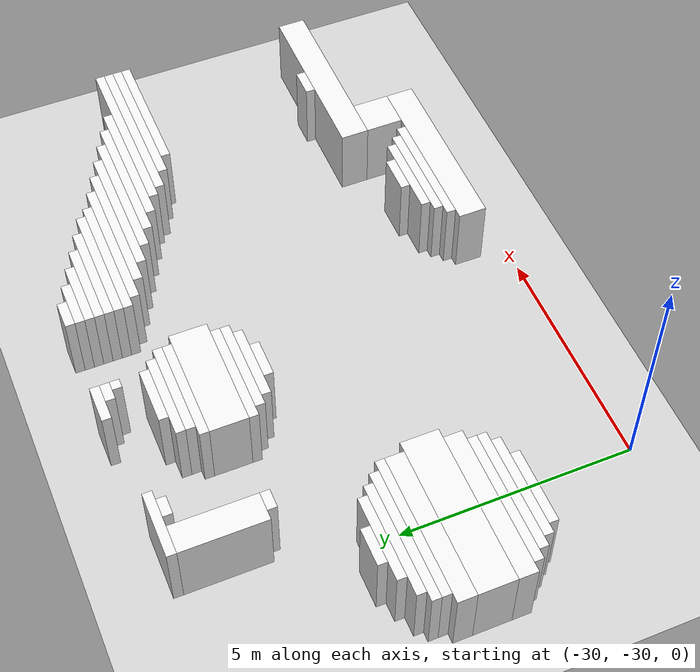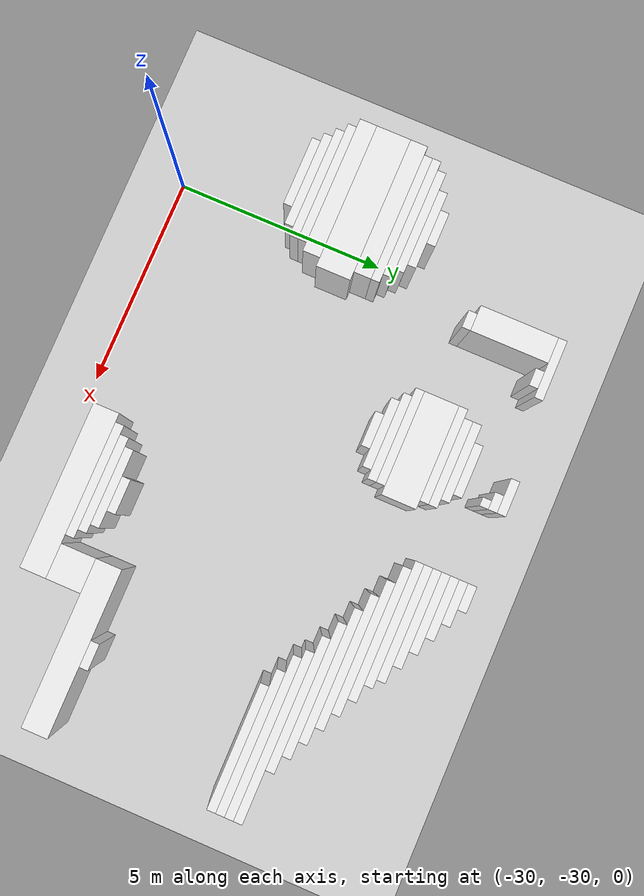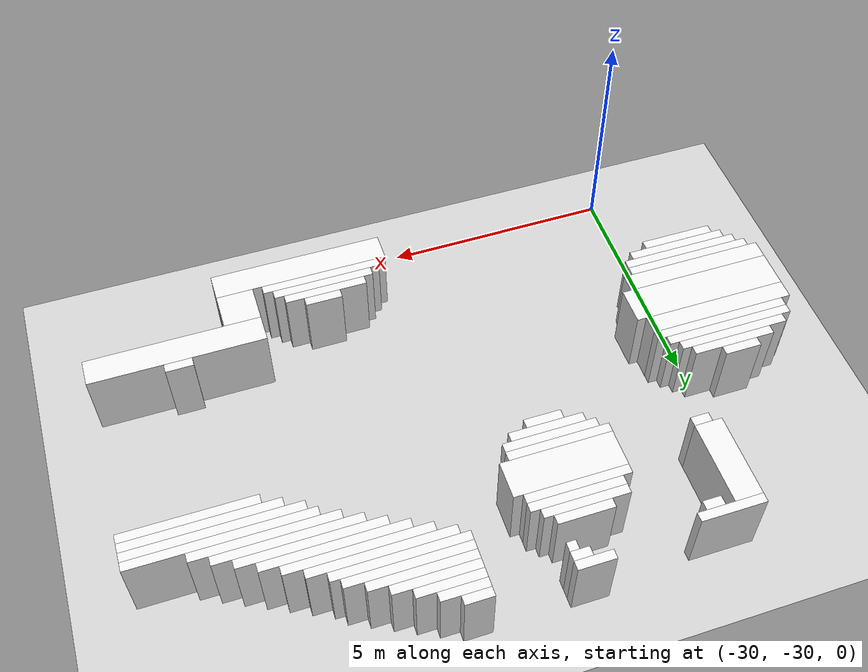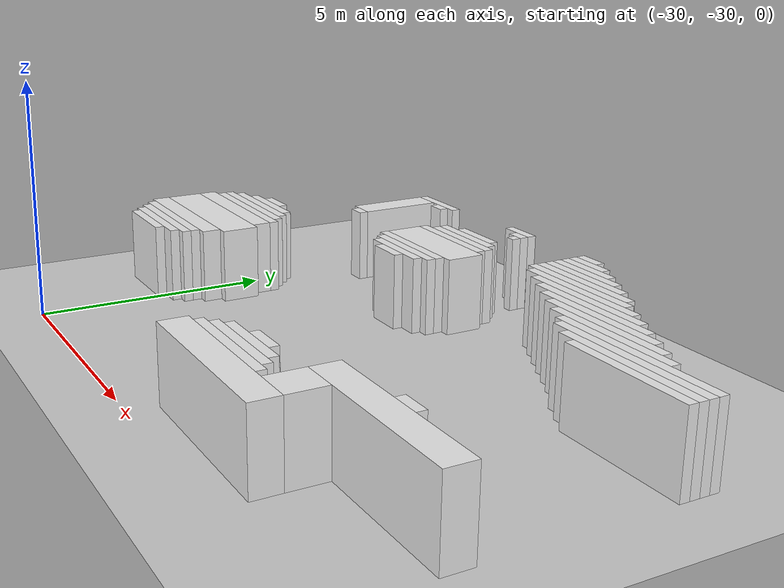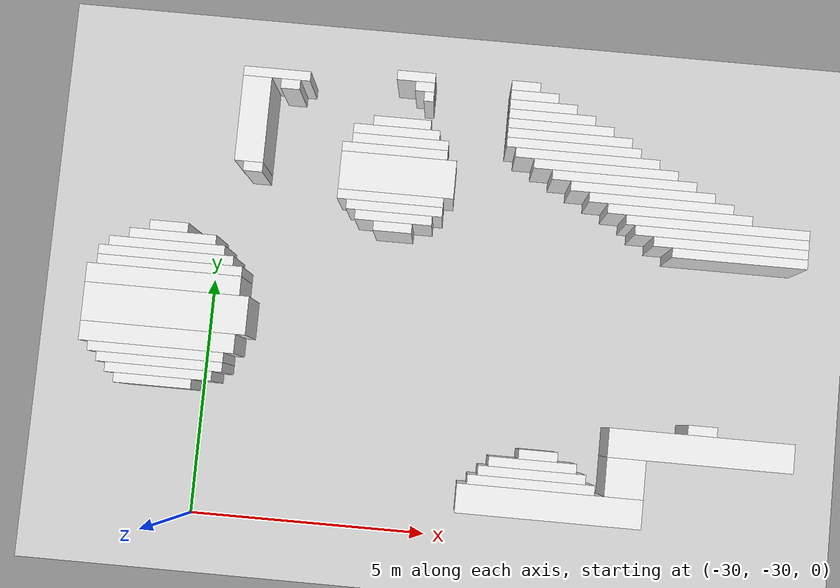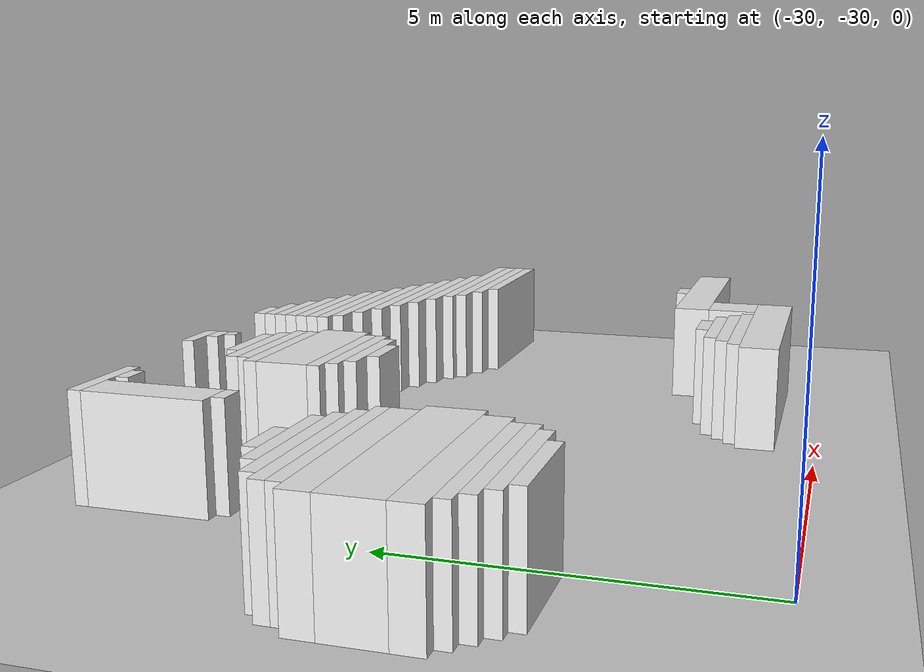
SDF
<sdf version="1.7">
 <world name="default">
  <model name="ground_plane">
   <static>1</static>
   <link name="link">
    <collision name="collision">
     <geometry><plane><normal>0 0 1</normal><size>120 120</size></plane></geometry>
    </collision>
    <visual name="visual">
     <geometry><plane><normal>0 0 1</normal><size>120 120</size></plane></geometry>
     <material>
      <script><uri>file://media/materials/scripts/gazebo.material</uri><name>Gazebo/Grey</name></script>
     </material>
    </visual>
   </link>
  </model>
  <model name="random_complex_02_model">
   <static>1</static>
   <link name="obs_2789">
    <pose>-26.0000 -20.5000 0.8000 0 0 0</pose>
    <collision name="obs_2789_col"><geometry><box><size>0.8000 0.2000 1.6000</size></box></geometry></collision>
    <visual name="obs_2789_vis">
     <geometry><box><size>0.8000 0.2000 1.6000</size></box></geometry>
     <material>
      <script><uri>file://media/materials/scripts/gazebo.material</uri><name>Gazebo/White</name></script>
     </material>
    </visual>
   </link>
   <link name="obs_2790">
    <pose>-23.7000 -20.5000 0.8000 0 0 0</pose>
    <collision name="obs_2790_col"><geometry><box><size>0.6000 0.2000 1.6000</size></box></geometry></collision>
    <visual name="obs_2790_vis">
     <geometry><box><size>0.6000 0.2000 1.6000</size></box></geometry>
     <material>
      <script><uri>file://media/materials/scripts/gazebo.material</uri><name>Gazebo/White</name></script>
     </material>
    </visual>
   </link>
   <link name="obs_2794">
    <pose>-28.9000 -20.7000 0.8000 0 0 0</pose>
    <collision name="obs_2794_col"><geometry><box><size>1.4000 0.2000 1.6000</size></box></geometry></collision>
    <visual name="obs_2794_vis">
     <geometry><box><size>1.4000 0.2000 1.6000</size></box></geometry>
     <material>
      <script><uri>file://media/materials/scripts/gazebo.material</uri><name>Gazebo/White</name></script>
     </material>
    </visual>
   </link>
   <link name="obs_2795">
    <pose>-25.8000 -20.7000 0.8000 0 0 0</pose>
    <collision name="obs_2795_col"><geometry><box><size>0.4000 0.2000 1.6000</size></box></geometry></collision>
    <visual name="obs_2795_vis">
     <geometry><box><size>0.4000 0.2000 1.6000</size></box></geometry>
     <material>
      <script><uri>file://media/materials/scripts/gazebo.material</uri><name>Gazebo/White</name></script>
     </material>
    </visual>
   </link>
   <link name="obs_2796">
    <pose>-23.5000 -20.7000 0.8000 0 0 0</pose>
    <collision name="obs_2796_col"><geometry><box><size>1.0000 0.2000 1.6000</size></box></geometry></collision>
    <visual name="obs_2796_vis">
     <geometry><box><size>1.0000 0.2000 1.6000</size></box></geometry>
     <material>
      <script><uri>file://media/materials/scripts/gazebo.material</uri><name>Gazebo/White</name></script>
     </material>
    </visual>
   </link>
   <link name="obs_2802">
    <pose>-28.6000 -20.9000 0.8000 0 0 0</pose>
    <collision name="obs_2802_col"><geometry><box><size>0.4000 0.2000 1.6000</size></box></geometry></collision>
    <visual name="obs_2802_vis">
     <geometry><box><size>0.4000 0.2000 1.6000</size></box></geometry>
     <material>
      <script><uri>file://media/materials/scripts/gazebo.material</uri><name>Gazebo/White</name></script>
     </material>
    </visual>
   </link>
   <link name="obs_2803">
    <pose>-25.7000 -20.9000 0.8000 0 0 0</pose>
    <collision name="obs_2803_col"><geometry><box><size>0.2000 0.2000 1.6000</size></box></geometry></collision>
    <visual name="obs_2803_vis">
     <geometry><box><size>0.2000 0.2000 1.6000</size></box></geometry>
     <material>
      <script><uri>file://media/materials/scripts/gazebo.material</uri><name>Gazebo/White</name></script>
     </material>
    </visual>
   </link>
   <link name="obs_2804">
    <pose>-23.3000 -20.9000 0.8000 0 0 0</pose>
    <collision name="obs_2804_col"><geometry><box><size>1.4000 0.2000 1.6000</size></box></geometry></collision>
    <visual name="obs_2804_vis">
     <geometry><box><size>1.4000 0.2000 1.6000</size></box></geometry>
     <material>
      <script><uri>file://media/materials/scripts/gazebo.material</uri><name>Gazebo/White</name></script>
     </material>
    </visual>
   </link>
   <link name="obs_2809">
    <pose>-23.1000 -21.1000 0.8000 0 0 0</pose>
    <collision name="obs_2809_col"><geometry><box><size>1.8000 0.2000 1.6000</size></box></geometry></collision>
    <visual name="obs_2809_vis">
     <geometry><box><size>1.8000 0.2000 1.6000</size></box></geometry>
     <material>
      <script><uri>file://media/materials/scripts/gazebo.material</uri><name>Gazebo/White</name></script>
     </material>
    </visual>
   </link>
   <link name="obs_2815">
    <pose>-22.9000 -21.3000 0.8000 0 0 0</pose>
    <collision name="obs_2815_col"><geometry><box><size>2.2000 0.2000 1.6000</size></box></geometry></collision>
    <visual name="obs_2815_vis">
     <geometry><box><size>2.2000 0.2000 1.6000</size></box></geometry>
     <material>
      <script><uri>file://media/materials/scripts/gazebo.material</uri><name>Gazebo/White</name></script>
     </material>
    </visual>
   </link>
   <link name="obs_2821">
    <pose>-26.2000 -21.5000 0.8000 0 0 0</pose>
    <collision name="obs_2821_col"><geometry><box><size>1.2000 0.2000 1.6000</size></box></geometry></collision>
    <visual name="obs_2821_vis">
     <geometry><box><size>1.2000 0.2000 1.6000</size></box></geometry>
     <material>
      <script><uri>file://media/materials/scripts/gazebo.material</uri><name>Gazebo/White</name></script>
     </material>
    </visual>
   </link>
   <link name="obs_2822">
    <pose>-22.7000 -21.5000 0.8000 0 0 0</pose>
    <collision name="obs_2822_col"><geometry><box><size>2.6000 0.2000 1.6000</size></box></geometry></collision>
    <visual name="obs_2822_vis">
     <geometry><box><size>2.6000 0.2000 1.6000</size></box></geometry>
     <material>
      <script><uri>file://media/materials/scripts/gazebo.material</uri><name>Gazebo/White</name></script>
     </material>
    </visual>
   </link>
   <link name="obs_2828">
    <pose>-26.3000 -21.7000 0.8000 0 0 0</pose>
    <collision name="obs_2828_col"><geometry><box><size>1.8000 0.2000 1.6000</size></box></geometry></collision>
    <visual name="obs_2828_vis">
     <geometry><box><size>1.8000 0.2000 1.6000</size></box></geometry>
     <material>
      <script><uri>file://media/materials/scripts/gazebo.material</uri><name>Gazebo/White</name></script>
     </material>
    </visual>
   </link>
   <link name="obs_2829">
    <pose>-22.6000 -21.7000 0.8000 0 0 0</pose>
    <collision name="obs_2829_col"><geometry><box><size>2.8000 0.2000 1.6000</size></box></geometry></collision>
    <visual name="obs_2829_vis">
     <geometry><box><size>2.8000 0.2000 1.6000</size></box></geometry>
     <material>
      <script><uri>file://media/materials/scripts/gazebo.material</uri><name>Gazebo/White</name></script>
     </material>
    </visual>
   </link>
   <link name="obs_2836">
    <pose>-26.2000 -21.9000 0.8000 0 0 0</pose>
    <collision name="obs_2836_col"><geometry><box><size>2.0000 0.2000 1.6000</size></box></geometry></collision>
    <visual name="obs_2836_vis">
     <geometry><box><size>2.0000 0.2000 1.6000</size></box></geometry>
     <material>
      <script><uri>file://media/materials/scripts/gazebo.material</uri><name>Gazebo/White</name></script>
     </material>
    </visual>
   </link>
   <link name="obs_2837">
    <pose>-22.3000 -21.9000 0.8000 0 0 0</pose>
    <collision name="obs_2837_col"><geometry><box><size>3.0000 0.2000 1.6000</size></box></geometry></collision>
    <visual name="obs_2837_vis">
     <geometry><box><size>3.0000 0.2000 1.6000</size></box></geometry>
     <material>
      <script><uri>file://media/materials/scripts/gazebo.material</uri><name>Gazebo/White</name></script>
     </material>
    </visual>
   </link>
   <link name="obs_2843">
    <pose>-26.3000 -22.1000 0.8000 0 0 0</pose>
    <collision name="obs_2843_col"><geometry><box><size>2.2000 0.2000 1.6000</size></box></geometry></collision>
    <visual name="obs_2843_vis">
     <geometry><box><size>2.2000 0.2000 1.6000</size></box></geometry>
     <material>
      <script><uri>file://media/materials/scripts/gazebo.material</uri><name>Gazebo/White</name></script>
     </material>
    </visual>
   </link>
   <link name="obs_2844">
    <pose>-21.9000 -22.1000 0.8000 0 0 0</pose>
    <collision name="obs_2844_col"><geometry><box><size>3.0000 0.2000 1.6000</size></box></geometry></collision>
    <visual name="obs_2844_vis">
     <geometry><box><size>3.0000 0.2000 1.6000</size></box></geometry>
     <material>
      <script><uri>file://media/materials/scripts/gazebo.material</uri><name>Gazebo/White</name></script>
     </material>
    </visual>
   </link>
   <link name="obs_2849">
    <pose>-21.5000 -22.3000 0.8000 0 0 0</pose>
    <collision name="obs_2849_col"><geometry><box><size>3.0000 0.2000 1.6000</size></box></geometry></collision>
    <visual name="obs_2849_vis">
     <geometry><box><size>3.0000 0.2000 1.6000</size></box></geometry>
     <material>
      <script><uri>file://media/materials/scripts/gazebo.material</uri><name>Gazebo/White</name></script>
     </material>
    </visual>
   </link>
   <link name="obs_2851">
    <pose>-29.3000 -21.7000 0.8000 0 0 0</pose>
    <collision name="obs_2851_col"><geometry><box><size>0.6000 1.8000 1.6000</size></box></geometry></collision>
    <visual name="obs_2851_vis">
     <geometry><box><size>0.6000 1.8000 1.6000</size></box></geometry>
     <material>
      <script><uri>file://media/materials/scripts/gazebo.material</uri><name>Gazebo/White</name></script>
     </material>
    </visual>
   </link>
   <link name="obs_2852">
    <pose>-21.1000 -22.5000 0.8000 0 0 0</pose>
    <collision name="obs_2852_col"><geometry><box><size>3.0000 0.2000 1.6000</size></box></geometry></collision>
    <visual name="obs_2852_vis">
     <geometry><box><size>3.0000 0.2000 1.6000</size></box></geometry>
     <material>
      <script><uri>file://media/materials/scripts/gazebo.material</uri><name>Gazebo/White</name></script>
     </material>
    </visual>
   </link>
   <link name="obs_2859">
    <pose>-29.2000 -22.7000 0.8000 0 0 0</pose>
    <collision name="obs_2859_col"><geometry><box><size>0.4000 0.2000 1.6000</size></box></geometry></collision>
    <visual name="obs_2859_vis">
     <geometry><box><size>0.4000 0.2000 1.6000</size></box></geometry>
     <material>
      <script><uri>file://media/materials/scripts/gazebo.material</uri><name>Gazebo/White</name></script>
     </material>
    </visual>
   </link>
   <link name="obs_2860">
    <pose>-20.7000 -22.7000 0.8000 0 0 0</pose>
    <collision name="obs_2860_col"><geometry><box><size>3.0000 0.2000 1.6000</size></box></geometry></collision>
    <visual name="obs_2860_vis">
     <geometry><box><size>3.0000 0.2000 1.6000</size></box></geometry>
     <material>
      <script><uri>file://media/materials/scripts/gazebo.material</uri><name>Gazebo/White</name></script>
     </material>
    </visual>
   </link>
   <link name="obs_2865">
    <pose>-26.2000 -22.6000 0.8000 0 0 0</pose>
    <collision name="obs_2865_col"><geometry><box><size>2.4000 0.8000 1.6000</size></box></geometry></collision>
    <visual name="obs_2865_vis">
     <geometry><box><size>2.4000 0.8000 1.6000</size></box></geometry>
     <material>
      <script><uri>file://media/materials/scripts/gazebo.material</uri><name>Gazebo/White</name></script>
     </material>
    </visual>
   </link>
   <link name="obs_2867">
    <pose>-20.3000 -22.9000 0.8000 0 0 0</pose>
    <collision name="obs_2867_col"><geometry><box><size>3.0000 0.2000 1.6000</size></box></geometry></collision>
    <visual name="obs_2867_vis">
     <geometry><box><size>3.0000 0.2000 1.6000</size></box></geometry>
     <material>
      <script><uri>file://media/materials/scripts/gazebo.material</uri><name>Gazebo/White</name></script>
     </material>
    </visual>
   </link>
   <link name="obs_2877">
    <pose>-26.3000 -23.1000 0.8000 0 0 0</pose>
    <collision name="obs_2877_col"><geometry><box><size>2.2000 0.2000 1.6000</size></box></geometry></collision>
    <visual name="obs_2877_vis">
     <geometry><box><size>2.2000 0.2000 1.6000</size></box></geometry>
     <material>
      <script><uri>file://media/materials/scripts/gazebo.material</uri><name>Gazebo/White</name></script>
     </material>
    </visual>
   </link>
   <link name="obs_2878">
    <pose>-19.5000 -23.1000 0.8000 0 0 0</pose>
    <collision name="obs_2878_col"><geometry><box><size>3.8000 0.2000 1.6000</size></box></geometry></collision>
    <visual name="obs_2878_vis">
     <geometry><box><size>3.8000 0.2000 1.6000</size></box></geometry>
     <material>
      <script><uri>file://media/materials/scripts/gazebo.material</uri><name>Gazebo/White</name></script>
     </material>
    </visual>
   </link>
   <link name="obs_2885">
    <pose>-26.2000 -23.3000 0.8000 0 0 0</pose>
    <collision name="obs_2885_col"><geometry><box><size>2.0000 0.2000 1.6000</size></box></geometry></collision>
    <visual name="obs_2885_vis">
     <geometry><box><size>2.0000 0.2000 1.6000</size></box></geometry>
     <material>
      <script><uri>file://media/materials/scripts/gazebo.material</uri><name>Gazebo/White</name></script>
     </material>
    </visual>
   </link>
   <link name="obs_2886">
    <pose>-19.4000 -23.3000 0.8000 0 0 0</pose>
    <collision name="obs_2886_col"><geometry><box><size>3.6000 0.2000 1.6000</size></box></geometry></collision>
    <visual name="obs_2886_vis">
     <geometry><box><size>3.6000 0.2000 1.6000</size></box></geometry>
     <material>
      <script><uri>file://media/materials/scripts/gazebo.material</uri><name>Gazebo/White</name></script>
     </material>
    </visual>
   </link>
   <link name="obs_2893">
    <pose>-26.2000 -23.5000 0.8000 0 0 0</pose>
    <collision name="obs_2893_col"><geometry><box><size>1.6000 0.2000 1.6000</size></box></geometry></collision>
    <visual name="obs_2893_vis">
     <geometry><box><size>1.6000 0.2000 1.6000</size></box></geometry>
     <material>
      <script><uri>file://media/materials/scripts/gazebo.material</uri><name>Gazebo/White</name></script>
     </material>
    </visual>
   </link>
   <link name="obs_2894">
    <pose>-19.2000 -23.5000 0.8000 0 0 0</pose>
    <collision name="obs_2894_col"><geometry><box><size>3.2000 0.2000 1.6000</size></box></geometry></collision>
    <visual name="obs_2894_vis">
     <geometry><box><size>3.2000 0.2000 1.6000</size></box></geometry>
     <material>
      <script><uri>file://media/materials/scripts/gazebo.material</uri><name>Gazebo/White</name></script>
     </material>
    </visual>
   </link>
   <link name="obs_2899">
    <pose>-26.2000 -23.7000 0.8000 0 0 0</pose>
    <collision name="obs_2899_col"><geometry><box><size>0.8000 0.2000 1.6000</size></box></geometry></collision>
    <visual name="obs_2899_vis">
     <geometry><box><size>0.8000 0.2000 1.6000</size></box></geometry>
     <material>
      <script><uri>file://media/materials/scripts/gazebo.material</uri><name>Gazebo/White</name></script>
     </material>
    </visual>
   </link>
   <link name="obs_2900">
    <pose>-19.0000 -23.7000 0.8000 0 0 0</pose>
    <collision name="obs_2900_col"><geometry><box><size>2.8000 0.2000 1.6000</size></box></geometry></collision>
    <visual name="obs_2900_vis">
     <geometry><box><size>2.8000 0.2000 1.6000</size></box></geometry>
     <material>
      <script><uri>file://media/materials/scripts/gazebo.material</uri><name>Gazebo/White</name></script>
     </material>
    </visual>
   </link>
   <link name="obs_2912">
    <pose>-30.8000 -24.1000 0.8000 0 0 0</pose>
    <collision name="obs_2912_col"><geometry><box><size>0.8000 0.2000 1.6000</size></box></geometry></collision>
    <visual name="obs_2912_vis">
     <geometry><box><size>0.8000 0.2000 1.6000</size></box></geometry>
     <material>
      <script><uri>file://media/materials/scripts/gazebo.material</uri><name>Gazebo/White</name></script>
     </material>
    </visual>
   </link>
   <link name="obs_2920">
    <pose>-30.7000 -24.3000 0.8000 0 0 0</pose>
    <collision name="obs_2920_col"><geometry><box><size>1.8000 0.2000 1.6000</size></box></geometry></collision>
    <visual name="obs_2920_vis">
     <geometry><box><size>1.8000 0.2000 1.6000</size></box></geometry>
     <material>
      <script><uri>file://media/materials/scripts/gazebo.material</uri><name>Gazebo/White</name></script>
     </material>
    </visual>
   </link>
   <link name="obs_2927">
    <pose>-30.8000 -24.5000 0.8000 0 0 0</pose>
    <collision name="obs_2927_col"><geometry><box><size>2.4000 0.2000 1.6000</size></box></geometry></collision>
    <visual name="obs_2927_vis">
     <geometry><box><size>2.4000 0.2000 1.6000</size></box></geometry>
     <material>
      <script><uri>file://media/materials/scripts/gazebo.material</uri><name>Gazebo/White</name></script>
     </material>
    </visual>
   </link>
   <link name="obs_2937">
    <pose>-30.8000 -24.7000 0.8000 0 0 0</pose>
    <collision name="obs_2937_col"><geometry><box><size>2.8000 0.2000 1.6000</size></box></geometry></collision>
    <visual name="obs_2937_vis">
     <geometry><box><size>2.8000 0.2000 1.6000</size></box></geometry>
     <material>
      <script><uri>file://media/materials/scripts/gazebo.material</uri><name>Gazebo/White</name></script>
     </material>
    </visual>
   </link>
   <link name="obs_2943">
    <pose>-30.7000 -24.9000 0.8000 0 0 0</pose>
    <collision name="obs_2943_col"><geometry><box><size>3.0000 0.2000 1.6000</size></box></geometry></collision>
    <visual name="obs_2943_vis">
     <geometry><box><size>3.0000 0.2000 1.6000</size></box></geometry>
     <material>
      <script><uri>file://media/materials/scripts/gazebo.material</uri><name>Gazebo/White</name></script>
     </material>
    </visual>
   </link>
   <link name="obs_2957">
    <pose>-30.8000 -25.2000 0.8000 0 0 0</pose>
    <collision name="obs_2957_col"><geometry><box><size>3.2000 0.4000 1.6000</size></box></geometry></collision>
    <visual name="obs_2957_vis">
     <geometry><box><size>3.2000 0.4000 1.6000</size></box></geometry>
     <material>
      <script><uri>file://media/materials/scripts/gazebo.material</uri><name>Gazebo/White</name></script>
     </material>
    </visual>
   </link>
   <link name="obs_2982">
    <pose>-30.7000 -25.8000 0.8000 0 0 0</pose>
    <collision name="obs_2982_col"><geometry><box><size>3.4000 0.8000 1.6000</size></box></geometry></collision>
    <visual name="obs_2982_vis">
     <geometry><box><size>3.4000 0.8000 1.6000</size></box></geometry>
     <material>
      <script><uri>file://media/materials/scripts/gazebo.material</uri><name>Gazebo/White</name></script>
     </material>
    </visual>
   </link>
   <link name="obs_2996">
    <pose>-30.8000 -26.4000 0.8000 0 0 0</pose>
    <collision name="obs_2996_col"><geometry><box><size>3.2000 0.4000 1.6000</size></box></geometry></collision>
    <visual name="obs_2996_vis">
     <geometry><box><size>3.2000 0.4000 1.6000</size></box></geometry>
     <material>
      <script><uri>file://media/materials/scripts/gazebo.material</uri><name>Gazebo/White</name></script>
     </material>
    </visual>
   </link>
   <link name="obs_3000">
    <pose>-30.8000 -26.7000 0.8000 0 0 0</pose>
    <collision name="obs_3000_col"><geometry><box><size>2.8000 0.2000 1.6000</size></box></geometry></collision>
    <visual name="obs_3000_vis">
     <geometry><box><size>2.8000 0.2000 1.6000</size></box></geometry>
     <material>
      <script><uri>file://media/materials/scripts/gazebo.material</uri><name>Gazebo/White</name></script>
     </material>
    </visual>
   </link>
   <link name="obs_3004">
    <pose>-30.7000 -26.9000 0.8000 0 0 0</pose>
    <collision name="obs_3004_col"><geometry><box><size>2.6000 0.2000 1.6000</size></box></geometry></collision>
    <visual name="obs_3004_vis">
     <geometry><box><size>2.6000 0.2000 1.6000</size></box></geometry>
     <material>
      <script><uri>file://media/materials/scripts/gazebo.material</uri><name>Gazebo/White</name></script>
     </material>
    </visual>
   </link>
   <link name="obs_3007">
    <pose>-30.7000 -27.1000 0.8000 0 0 0</pose>
    <collision name="obs_3007_col"><geometry><box><size>2.2000 0.2000 1.6000</size></box></geometry></collision>
    <visual name="obs_3007_vis">
     <geometry><box><size>2.2000 0.2000 1.6000</size></box></geometry>
     <material>
      <script><uri>file://media/materials/scripts/gazebo.material</uri><name>Gazebo/White</name></script>
     </material>
    </visual>
   </link>
   <link name="obs_3012">
    <pose>-30.8000 -27.3000 0.8000 0 0 0</pose>
    <collision name="obs_3012_col"><geometry><box><size>1.6000 0.2000 1.6000</size></box></geometry></collision>
    <visual name="obs_3012_vis">
     <geometry><box><size>1.6000 0.2000 1.6000</size></box></geometry>
     <material>
      <script><uri>file://media/materials/scripts/gazebo.material</uri><name>Gazebo/White</name></script>
     </material>
    </visual>
   </link>
   <link name="obs_3013">
    <pose>-19.5000 -27.3000 0.8000 0 0 0</pose>
    <collision name="obs_3013_col"><geometry><box><size>0.6000 0.2000 1.6000</size></box></geometry></collision>
    <visual name="obs_3013_vis">
     <geometry><box><size>0.6000 0.2000 1.6000</size></box></geometry>
     <material>
      <script><uri>file://media/materials/scripts/gazebo.material</uri><name>Gazebo/White</name></script>
     </material>
    </visual>
   </link>
   <link name="obs_3022">
    <pose>-19.5000 -27.7000 0.8000 0 0 0</pose>
    <collision name="obs_3022_col"><geometry><box><size>3.8000 0.6000 1.6000</size></box></geometry></collision>
    <visual name="obs_3022_vis">
     <geometry><box><size>3.8000 0.6000 1.6000</size></box></geometry>
     <material>
      <script><uri>file://media/materials/scripts/gazebo.material</uri><name>Gazebo/White</name></script>
     </material>
    </visual>
   </link>
   <link name="obs_3027">
    <pose>-22.8000 -28.1000 0.8000 0 0 0</pose>
    <collision name="obs_3027_col"><geometry><box><size>0.8000 0.2000 1.6000</size></box></geometry></collision>
    <visual name="obs_3027_vis">
     <geometry><box><size>0.8000 0.2000 1.6000</size></box></geometry>
     <material>
      <script><uri>file://media/materials/scripts/gazebo.material</uri><name>Gazebo/White</name></script>
     </material>
    </visual>
   </link>
   <link name="obs_3033">
    <pose>-22.9000 -28.3000 0.8000 0 0 0</pose>
    <collision name="obs_3033_col"><geometry><box><size>1.8000 0.2000 1.6000</size></box></geometry></collision>
    <visual name="obs_3033_vis">
     <geometry><box><size>1.8000 0.2000 1.6000</size></box></geometry>
     <material>
      <script><uri>file://media/materials/scripts/gazebo.material</uri><name>Gazebo/White</name></script>
     </material>
    </visual>
   </link>
   <link name="obs_3037">
    <pose>-22.9000 -28.5000 0.8000 0 0 0</pose>
    <collision name="obs_3037_col"><geometry><box><size>2.2000 0.2000 1.6000</size></box></geometry></collision>
    <visual name="obs_3037_vis">
     <geometry><box><size>2.2000 0.2000 1.6000</size></box></geometry>
     <material>
      <script><uri>file://media/materials/scripts/gazebo.material</uri><name>Gazebo/White</name></script>
     </material>
    </visual>
   </link>
   <link name="obs_3041">
    <pose>-21.0000 -28.4000 0.8000 0 0 0</pose>
    <collision name="obs_3041_col"><geometry><box><size>0.8000 0.8000 1.6000</size></box></geometry></collision>
    <visual name="obs_3041_vis">
     <geometry><box><size>0.8000 0.8000 1.6000</size></box></geometry>
     <material>
      <script><uri>file://media/materials/scripts/gazebo.material</uri><name>Gazebo/White</name></script>
     </material>
    </visual>
   </link>
   <link name="obs_3042">
    <pose>-22.9000 -28.7000 0.8000 0 0 0</pose>
    <collision name="obs_3042_col"><geometry><box><size>2.6000 0.2000 1.6000</size></box></geometry></collision>
    <visual name="obs_3042_vis">
     <geometry><box><size>2.6000 0.2000 1.6000</size></box></geometry>
     <material>
      <script><uri>file://media/materials/scripts/gazebo.material</uri><name>Gazebo/White</name></script>
     </material>
    </visual>
   </link>
   <link name="obs_3057">
    <pose>-22.5000 -29.1000 0.8000 0 0 0</pose>
    <collision name="obs_3057_col"><geometry><box><size>3.8000 0.6000 1.6000</size></box></geometry></collision>
    <visual name="obs_3057_vis">
     <geometry><box><size>3.8000 0.6000 1.6000</size></box></geometry>
     <material>
      <script><uri>file://media/materials/scripts/gazebo.material</uri><name>Gazebo/White</name></script>
     </material>
    </visual>
   </link>
  </model>
 </world>
</sdf>
